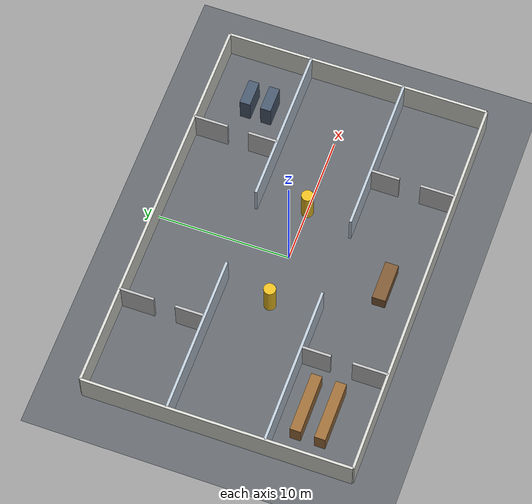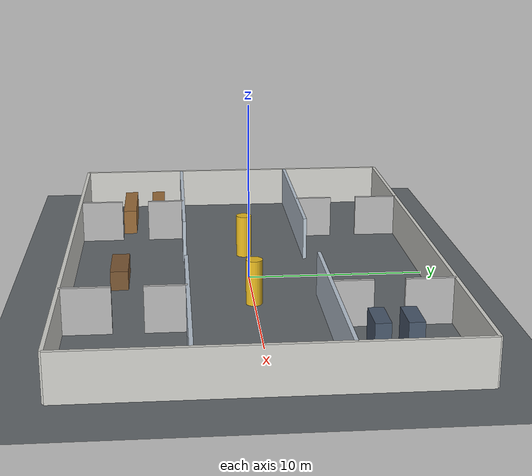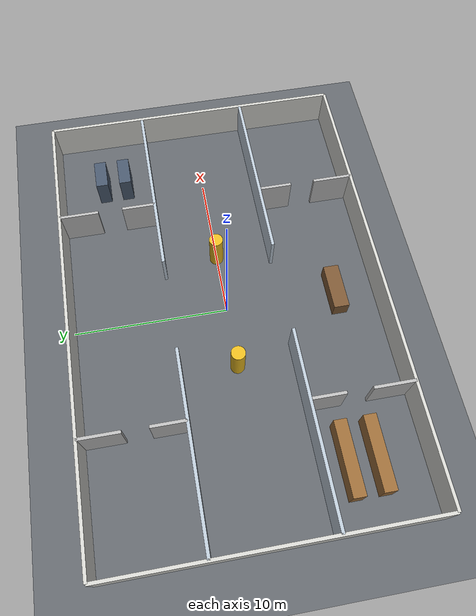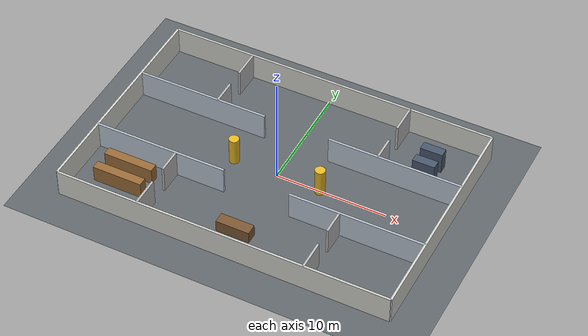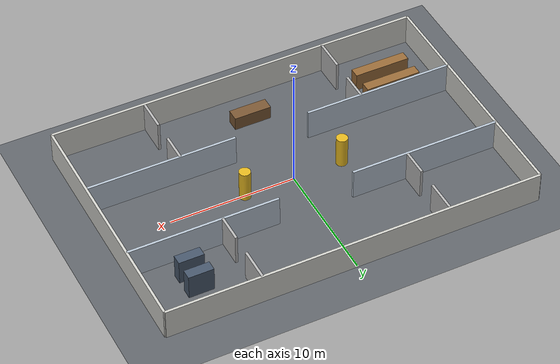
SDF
<?xml version="1.0"?>
<sdf version="1.9">
  <world name="industrial_facility">

    <physics name="physics" type="gz">
      <max_step_size>0.001</max_step_size>
      <real_time_factor>1.0</real_time_factor>
    </physics>

    <plugin
      filename="gz-sim-physics-system"
      name="gz::sim::systems::Physics"/>

    <plugin
      filename="gz-sim-user-commands-system"
      name="gz::sim::systems::UserCommands"/>

    <plugin
      filename="gz-sim-scene-broadcaster-system"
      name="gz::sim::systems::SceneBroadcaster"/>

    <plugin
      filename="gz-sim-sensors-system"
      name="gz::sim::systems::Sensors">
      <render_engine>ogre2</render_engine>
    </plugin>

    <light type="directional" name="sun">
      <pose>0 0 15 0 0 0</pose>
      <diffuse>0.85 0.85 0.85 1</diffuse>
      <specular>0.2 0.2 0.2 1</specular>
      <direction>-0.5 0.2 -0.9</direction>
    </light>

    <light type="point" name="facility_light_1">
      <pose>-8 -5 4 0 0 0</pose>
      <diffuse>0.8 0.8 0.75 1</diffuse>
      <specular>0.1 0.1 0.1 1</specular>
      <attenuation>
        <range>20</range>
        <constant>0.7</constant>
        <linear>0.02</linear>
        <quadratic>0.001</quadratic>
      </attenuation>
    </light>

    <light type="point" name="facility_light_2">
      <pose>8 -5 4 0 0 0</pose>
      <diffuse>0.8 0.8 0.75 1</diffuse>
      <specular>0.1 0.1 0.1 1</specular>
      <attenuation>
        <range>20</range>
        <constant>0.7</constant>
        <linear>0.02</linear>
        <quadratic>0.001</quadratic>
      </attenuation>
    </light>

    <light type="point" name="facility_light_3">
      <pose>-8 5 4 0 0 0</pose>
      <diffuse>0.8 0.8 0.75 1</diffuse>
      <specular>0.1 0.1 0.1 1</specular>
      <attenuation>
        <range>20</range>
        <constant>0.7</constant>
        <linear>0.02</linear>
        <quadratic>0.001</quadratic>
      </attenuation>
    </light>

    <light type="point" name="facility_light_4">
      <pose>8 5 4 0 0 0</pose>
      <diffuse>0.8 0.8 0.75 1</diffuse>
      <specular>0.1 0.1 0.1 1</specular>
      <attenuation>
        <range>20</range>
        <constant>0.7</constant>
        <linear>0.02</linear>
        <quadratic>0.001</quadratic>
      </attenuation>
    </light>

    <!-- Floor: 30 m x 20 m -->
    <model name="ground_plane">
      <static>true</static>
      <link name="link">
        <collision name="collision">
          <geometry>
            <plane>
              <normal>0 0 1</normal>
              <size>30 20</size>
            </plane>
          </geometry>
        </collision>

        <visual name="visual">
          <geometry>
            <plane>
              <normal>0 0 1</normal>
              <size>30 20</size>
            </plane>
          </geometry>
          <material>
            <ambient>0.28 0.30 0.32 1</ambient>
            <diffuse>0.38 0.40 0.42 1</diffuse>
          </material>
        </visual>
      </link>
    </model>

    <!-- Outer walls -->
    <model name="outer_wall_north">
      <static>true</static>
      <pose>0 10 1.25 0 0 0</pose>
      <link name="link">
        <collision name="collision">
          <geometry><box><size>30 0.2 2.5</size></box></geometry>
        </collision>
        <visual name="visual">
          <geometry><box><size>30 0.2 2.5</size></box></geometry>
          <material>
            <ambient>0.72 0.72 0.70 1</ambient>
            <diffuse>0.82 0.82 0.80 1</diffuse>
          </material>
        </visual>
      </link>
    </model>

    <model name="outer_wall_south">
      <static>true</static>
      <pose>0 -10 1.25 0 0 0</pose>
      <link name="link">
        <collision name="collision">
          <geometry><box><size>30 0.2 2.5</size></box></geometry>
        </collision>
        <visual name="visual">
          <geometry><box><size>30 0.2 2.5</size></box></geometry>
          <material>
            <ambient>0.72 0.72 0.70 1</ambient>
            <diffuse>0.82 0.82 0.80 1</diffuse>
          </material>
        </visual>
      </link>
    </model>

    <model name="outer_wall_west">
      <static>true</static>
      <pose>-15 0 1.25 0 0 0</pose>
      <link name="link">
        <collision name="collision">
          <geometry><box><size>0.2 20 2.5</size></box></geometry>
        </collision>
        <visual name="visual">
          <geometry><box><size>0.2 20 2.5</size></box></geometry>
          <material>
            <ambient>0.72 0.72 0.70 1</ambient>
            <diffuse>0.82 0.82 0.80 1</diffuse>
          </material>
        </visual>
      </link>
    </model>

    <model name="outer_wall_east">
      <static>true</static>
      <pose>15 0 1.25 0 0 0</pose>
      <link name="link">
        <collision name="collision">
          <geometry><box><size>0.2 20 2.5</size></box></geometry>
        </collision>
        <visual name="visual">
          <geometry><box><size>0.2 20 2.5</size></box></geometry>
          <material>
            <ambient>0.72 0.72 0.70 1</ambient>
            <diffuse>0.82 0.82 0.80 1</diffuse>
          </material>
        </visual>
      </link>
    </model>

    <!-- Horizontal room separators with wide corridor openings -->
    <model name="north_separator_west">
      <static>true</static>
      <pose>-9 3.6 1.25 0 0 0</pose>
      <link name="link">
        <collision name="collision">
          <geometry><box><size>12 0.2 2.5</size></box></geometry>
        </collision>
        <visual name="visual">
          <geometry><box><size>12 0.2 2.5</size></box></geometry>
          <material>
            <ambient>0.62 0.67 0.72 1</ambient>
            <diffuse>0.72 0.77 0.82 1</diffuse>
          </material>
        </visual>
      </link>
    </model>

    <model name="north_separator_east">
      <static>true</static>
      <pose>9 3.6 1.25 0 0 0</pose>
      <link name="link">
        <collision name="collision">
          <geometry><box><size>12 0.2 2.5</size></box></geometry>
        </collision>
        <visual name="visual">
          <geometry><box><size>12 0.2 2.5</size></box></geometry>
          <material>
            <ambient>0.62 0.67 0.72 1</ambient>
            <diffuse>0.72 0.77 0.82 1</diffuse>
          </material>
        </visual>
      </link>
    </model>

    <model name="south_separator_west">
      <static>true</static>
      <pose>-9 -3.6 1.25 0 0 0</pose>
      <link name="link">
        <collision name="collision">
          <geometry><box><size>12 0.2 2.5</size></box></geometry>
        </collision>
        <visual name="visual">
          <geometry><box><size>12 0.2 2.5</size></box></geometry>
          <material>
            <ambient>0.62 0.67 0.72 1</ambient>
            <diffuse>0.72 0.77 0.82 1</diffuse>
          </material>
        </visual>
      </link>
    </model>

    <model name="south_separator_east">
      <static>true</static>
      <pose>9 -3.6 1.25 0 0 0</pose>
      <link name="link">
        <collision name="collision">
          <geometry><box><size>12 0.2 2.5</size></box></geometry>
        </collision>
        <visual name="visual">
          <geometry><box><size>12 0.2 2.5</size></box></geometry>
          <material>
            <ambient>0.62 0.67 0.72 1</ambient>
            <diffuse>0.72 0.77 0.82 1</diffuse>
          </material>
        </visual>
      </link>
    </model>

    <!-- North room divisions. Door openings remain around y=6.2 -->
    <model name="north_left_divider_south">
      <static>true</static>
      <pose>-7.5 4.7 1.25 0 0 0</pose>
      <link name="link">
        <collision name="collision">
          <geometry><box><size>0.2 2.2 2.5</size></box></geometry>
        </collision>
        <visual name="visual">
          <geometry><box><size>0.2 2.2 2.5</size></box></geometry>
        </visual>
      </link>
    </model>

    <model name="north_left_divider_north">
      <static>true</static>
      <pose>-7.5 8.7 1.25 0 0 0</pose>
      <link name="link">
        <collision name="collision">
          <geometry><box><size>0.2 2.6 2.5</size></box></geometry>
        </collision>
        <visual name="visual">
          <geometry><box><size>0.2 2.6 2.5</size></box></geometry>
        </visual>
      </link>
    </model>

    <model name="north_right_divider_south">
      <static>true</static>
      <pose>7.5 4.7 1.25 0 0 0</pose>
      <link name="link">
        <collision name="collision">
          <geometry><box><size>0.2 2.2 2.5</size></box></geometry>
        </collision>
        <visual name="visual">
          <geometry><box><size>0.2 2.2 2.5</size></box></geometry>
        </visual>
      </link>
    </model>

    <model name="north_right_divider_north">
      <static>true</static>
      <pose>7.5 8.7 1.25 0 0 0</pose>
      <link name="link">
        <collision name="collision">
          <geometry><box><size>0.2 2.6 2.5</size></box></geometry>
        </collision>
        <visual name="visual">
          <geometry><box><size>0.2 2.6 2.5</size></box></geometry>
        </visual>
      </link>
    </model>

    <!-- South room divisions -->
    <model name="south_left_divider_north">
      <static>true</static>
      <pose>-7.5 -4.7 1.25 0 0 0</pose>
      <link name="link">
        <collision name="collision">
          <geometry><box><size>0.2 2.2 2.5</size></box></geometry>
        </collision>
        <visual name="visual">
          <geometry><box><size>0.2 2.2 2.5</size></box></geometry>
        </visual>
      </link>
    </model>

    <model name="south_left_divider_south">
      <static>true</static>
      <pose>-7.5 -8.7 1.25 0 0 0</pose>
      <link name="link">
        <collision name="collision">
          <geometry><box><size>0.2 2.6 2.5</size></box></geometry>
        </collision>
        <visual name="visual">
          <geometry><box><size>0.2 2.6 2.5</size></box></geometry>
        </visual>
      </link>
    </model>

    <model name="south_right_divider_north">
      <static>true</static>
      <pose>7.5 -4.7 1.25 0 0 0</pose>
      <link name="link">
        <collision name="collision">
          <geometry><box><size>0.2 2.2 2.5</size></box></geometry>
        </collision>
        <visual name="visual">
          <geometry><box><size>0.2 2.2 2.5</size></box></geometry>
        </visual>
      </link>
    </model>

    <model name="south_right_divider_south">
      <static>true</static>
      <pose>7.5 -8.7 1.25 0 0 0</pose>
      <link name="link">
        <collision name="collision">
          <geometry><box><size>0.2 2.6 2.5</size></box></geometry>
        </collision>
        <visual name="visual">
          <geometry><box><size>0.2 2.6 2.5</size></box></geometry>
        </visual>
      </link>
    </model>

    <!-- Warehouse racks -->
    <model name="warehouse_rack_1">
      <static>true</static>
      <pose>-11 -7 0.75 0 0 0</pose>
      <link name="link">
        <collision name="collision">
          <geometry><box><size>4.5 0.8 1.5</size></box></geometry>
        </collision>
        <visual name="visual">
          <geometry><box><size>4.5 0.8 1.5</size></box></geometry>
          <material>
            <ambient>0.45 0.30 0.15 1</ambient>
            <diffuse>0.60 0.42 0.22 1</diffuse>
          </material>
        </visual>
      </link>
    </model>

    <model name="warehouse_rack_2">
      <static>true</static>
      <pose>-11 -5.2 0.75 0 0 0</pose>
      <link name="link">
        <collision name="collision">
          <geometry><box><size>4.5 0.8 1.5</size></box></geometry>
        </collision>
        <visual name="visual">
          <geometry><box><size>4.5 0.8 1.5</size></box></geometry>
          <material>
            <ambient>0.45 0.30 0.15 1</ambient>
            <diffuse>0.60 0.42 0.22 1</diffuse>
          </material>
        </visual>
      </link>
    </model>

    <!-- Equipment cabinets -->
    <model name="equipment_cabinet_1">
      <static>true</static>
      <pose>11 7 1 0 0 0</pose>
      <link name="link">
        <collision name="collision">
          <geometry><box><size>2.0 0.8 2.0</size></box></geometry>
        </collision>
        <visual name="visual">
          <geometry><box><size>2.0 0.8 2.0</size></box></geometry>
          <material>
            <ambient>0.18 0.22 0.28 1</ambient>
            <diffuse>0.28 0.34 0.42 1</diffuse>
          </material>
        </visual>
      </link>
    </model>

    <model name="equipment_cabinet_2">
      <static>true</static>
      <pose>11 5.4 1 0 0 0</pose>
      <link name="link">
        <collision name="collision">
          <geometry><box><size>2.0 0.8 2.0</size></box></geometry>
        </collision>
        <visual name="visual">
          <geometry><box><size>2.0 0.8 2.0</size></box></geometry>
          <material>
            <ambient>0.18 0.22 0.28 1</ambient>
            <diffuse>0.28 0.34 0.42 1</diffuse>
          </material>
        </visual>
      </link>
    </model>

    <!-- Lobby desk -->
    <model name="lobby_desk">
      <static>true</static>
      <pose>0 -7.3 0.55 0 0 0</pose>
      <link name="link">
        <collision name="collision">
          <geometry><box><size>3.0 1.0 1.1</size></box></geometry>
        </collision>
        <visual name="visual">
          <geometry><box><size>3.0 1.0 1.1</size></box></geometry>
          <material>
            <ambient>0.30 0.20 0.12 1</ambient>
            <diffuse>0.48 0.34 0.20 1</diffuse>
          </material>
        </visual>
      </link>
    </model>

    <!-- Central safety columns -->
    <model name="column_west">
      <static>true</static>
      <pose>-4 0 1.25 0 0 0</pose>
      <link name="link">
        <collision name="collision">
          <geometry><cylinder><radius>0.45</radius><length>2.5</length></cylinder></geometry>
        </collision>
        <visual name="visual">
          <geometry><cylinder><radius>0.45</radius><length>2.5</length></cylinder></geometry>
          <material>
            <ambient>0.75 0.60 0.10 1</ambient>
            <diffuse>0.90 0.72 0.12 1</diffuse>
          </material>
        </visual>
      </link>
    </model>

    <model name="column_east">
      <static>true</static>
      <pose>4 0 1.25 0 0 0</pose>
      <link name="link">
        <collision name="collision">
          <geometry><cylinder><radius>0.45</radius><length>2.5</length></cylinder></geometry>
        </collision>
        <visual name="visual">
          <geometry><cylinder><radius>0.45</radius><length>2.5</length></cylinder></geometry>
          <material>
            <ambient>0.75 0.60 0.10 1</ambient>
            <diffuse>0.90 0.72 0.12 1</diffuse>
          </material>
        </visual>
      </link>
    </model>

  </world>
</sdf>
